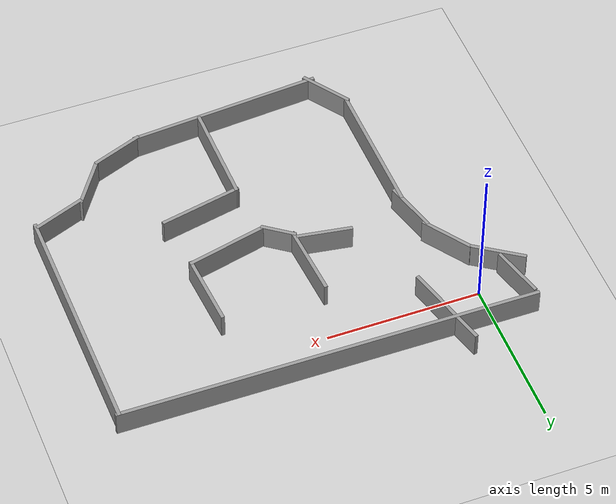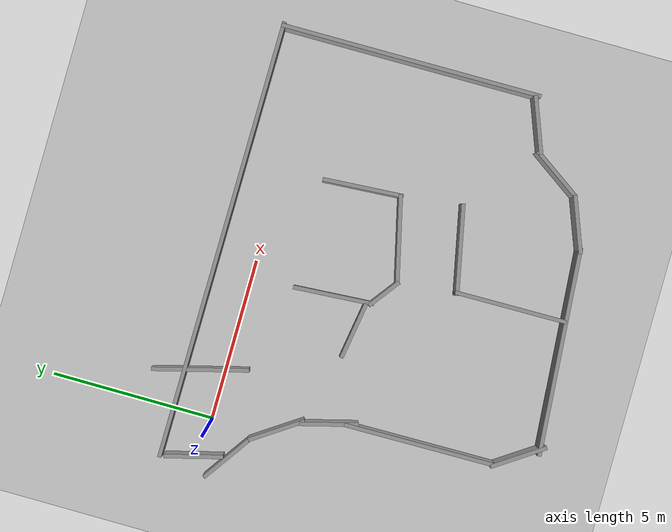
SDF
<sdf version="1.7">
 <world name="default">
  <light name="sun" type="directional">
   <pose>0 0 10 0 -0 0</pose>
   <diffuse>0.8 0.8 0.8 1</diffuse>
   <specular>0.2 0.2 0.2 1</specular>
   <attenuation>
    <range>1000</range>
    <constant>0.9</constant>
    <linear>0.01</linear>
    <quadratic>0.001</quadratic>
   </attenuation>
   <direction>-0.5 0.1 -0.9</direction>
   <spot><inner_angle>0</inner_angle><outer_angle>0</outer_angle><falloff>0</falloff></spot>
  </light>
  <model name="ground_plane">
   <static>1</static>
   <link name="link">
    <collision name="collision">
     <geometry><plane><normal>0 0 1</normal><size>100 100</size></plane></geometry>
     <surface><friction><ode><mu>100</mu><mu2>50</mu2></ode></friction></surface>
    </collision>
    <visual name="visual">
     <cast_shadows>0</cast_shadows>
     <geometry><plane><normal>0 0 1</normal><size>100 100</size></plane></geometry>
     <material>
      <script><uri>file://media/materials/scripts/gazebo.material</uri><name>Gazebo/Grey</name></script>
     </material>
    </visual>
   </link>
  </model>
  <gravity>0 0 -9.8</gravity>
  <magnetic_field>6e-06 2.3e-05 -4.2e-05</magnetic_field>
  <atmosphere type="adiabatic"/>
  <physics type="ode">
   <max_step_size>0.001</max_step_size>
   <real_time_factor>1</real_time_factor>
   <real_time_update_rate>1000</real_time_update_rate>
  </physics>
  <scene><ambient>0.4 0.4 0.4 1</ambient><background>0.7 0.7 0.7 1</background><shadows>1</shadows></scene>
  <spherical_coordinates>
   <surface_model>EARTH_WGS84</surface_model>
   <latitude_deg>0</latitude_deg>
   <longitude_deg>0</longitude_deg>
   <elevation>0</elevation>
   <heading_deg>0</heading_deg>
  </spherical_coordinates>
  <model name="maze_modelv3">
   <link name="link">
    <inertial>
     <mass>1.62017</mass>
     <inertia><ixx>25.0752</ixx><ixy>0</ixy><ixz>0</ixz><iyy>0.136935</iyy><iyz>0</iyz><izz>24.9421</izz></inertia>
    </inertial>
    <pose>1.11344 1.70908 -0.183149 0 -0 1.56621</pose>
    <visual name="visual">
     <geometry><box><size>0.119269 13.5912 1</size></box></geometry>
     <material>
      <script><name>Gazebo/Grey</name><uri>file://media/materials/scripts/gazebo.material</uri></script>
      <shader type="pixel"/>
     </material>
    </visual>
    <collision name="collision">
     <geometry><box><size>0.119269 13.5912 1</size></box></geometry>
     <surface>
      <friction>
       <ode><mu>1</mu><mu2>1</mu2><fdir1>0 0 0</fdir1><slip1>0</slip1><slip2>0</slip2></ode>
       <torsional>
        <coefficient>1</coefficient>
        <patch_radius>0</patch_radius>
        <surface_radius>0</surface_radius>
        <use_patch_radius>1</use_patch_radius>
        <ode><slip>0</slip></ode>
       </torsional>
      </friction>
      <bounce><restitution_coefficient>0</restitution_coefficient><threshold>1e+06</threshold></bounce>
      <contact>
       <collide_without_contact>0</collide_without_contact>
       <collide_without_contact_bitmask>1</collide_without_contact_bitmask>
       <collide_bitmask>1</collide_bitmask>
       <ode>
        <soft_cfm>0</soft_cfm>
        <soft_erp>0.2</soft_erp>
        <kp>1e+13</kp>
        <kd>1</kd>
        <max_vel>0.01</max_vel>
        <min_depth>0</min_depth>
       </ode>
       <bullet>
        <split_impulse>1</split_impulse>
        <split_impulse_penetration_threshold>-0.01</split_impulse_penetration_threshold>
        <soft_cfm>0</soft_cfm>
        <soft_erp>0.2</soft_erp>
        <kp>1e+13</kp>
        <kd>1</kd>
       </bullet>
      </contact>
     </surface>
    </collision>
   </link>
   <link name="link_clone_0">
    <inertial>
     <mass>0.212702</mass>
     <inertia>
      <ixx>0.0741382</ixx>
      <ixy>0</ixy>
      <ixz>0</ixz>
      <iyy>0.0179773</iyy>
      <iyz>0</iyz>
      <izz>0.0566651</izz>
     </inertia>
    </inertial>
    <pose>-5.16764 -0.221401 -0.183151 6e-06 -8e-06 0.964406</pose>
    <visual name="visual">
     <geometry><box><size>0.119269 1.784 1</size></box></geometry>
     <material>
      <script><name>Gazebo/Grey</name><uri>file://media/materials/scripts/gazebo.material</uri></script>
      <shader type="pixel"><normal_map>__default__</normal_map></shader>
     </material>
    </visual>
    <collision name="collision">
     <geometry><box><size>0.119269 1.784 1</size></box></geometry>
     <surface>
      <friction>
       <ode><mu>1</mu><mu2>1</mu2><fdir1>0 0 0</fdir1><slip1>0</slip1><slip2>0</slip2></ode>
       <torsional>
        <coefficient>1</coefficient>
        <patch_radius>0</patch_radius>
        <surface_radius>0</surface_radius>
        <use_patch_radius>1</use_patch_radius>
        <ode><slip>0</slip></ode>
       </torsional>
      </friction>
      <bounce><restitution_coefficient>0</restitution_coefficient><threshold>1e+06</threshold></bounce>
      <contact>
       <collide_without_contact>0</collide_without_contact>
       <collide_without_contact_bitmask>1</collide_without_contact_bitmask>
       <collide_bitmask>1</collide_bitmask>
       <ode>
        <soft_cfm>0</soft_cfm>
        <soft_erp>0.2</soft_erp>
        <kp>1e+13</kp>
        <kd>1</kd>
        <max_vel>0.01</max_vel>
        <min_depth>0</min_depth>
       </ode>
       <bullet>
        <split_impulse>1</split_impulse>
        <split_impulse_penetration_threshold>-0.01</split_impulse_penetration_threshold>
        <soft_cfm>0</soft_cfm>
        <soft_erp>0.2</soft_erp>
        <kp>1e+13</kp>
        <kd>1</kd>
       </bullet>
      </contact>
     </surface>
    </collision>
   </link>
   <link name="link_clone_0_clone">
    <inertial>
     <mass>0.212702</mass>
     <inertia>
      <ixx>0.0741382</ixx>
      <ixy>0</ixy>
      <ixz>0</ixz>
      <iyy>0.0179773</iyy>
      <iyz>0</iyz>
      <izz>0.0566651</izz>
     </inertia>
    </inertial>
    <pose>-3.96131 -1.42523 -0.183167 1.7e-05 -1.1e-05 0.59672</pose>
    <visual name="visual">
     <geometry><box><size>0.119269 1.784 1</size></box></geometry>
     <material>
      <script><name>Gazebo/Grey</name><uri>file://media/materials/scripts/gazebo.material</uri></script>
      <shader type="pixel"><normal_map>__default__</normal_map></shader>
     </material>
    </visual>
    <collision name="collision">
     <geometry><box><size>0.119269 1.784 1</size></box></geometry>
     <surface>
      <friction>
       <ode><mu>1</mu><mu2>1</mu2><fdir1>0 0 0</fdir1><slip1>0</slip1><slip2>0</slip2></ode>
       <torsional>
        <coefficient>1</coefficient>
        <patch_radius>0</patch_radius>
        <surface_radius>0</surface_radius>
        <use_patch_radius>1</use_patch_radius>
        <ode><slip>0</slip></ode>
       </torsional>
      </friction>
      <bounce><restitution_coefficient>0</restitution_coefficient><threshold>1e+06</threshold></bounce>
      <contact>
       <collide_without_contact>0</collide_without_contact>
       <collide_without_contact_bitmask>1</collide_without_contact_bitmask>
       <collide_bitmask>1</collide_bitmask>
       <ode>
        <soft_cfm>0</soft_cfm>
        <soft_erp>0.2</soft_erp>
        <kp>1e+13</kp>
        <kd>1</kd>
        <max_vel>0.01</max_vel>
        <min_depth>0</min_depth>
       </ode>
       <bullet>
        <split_impulse>1</split_impulse>
        <split_impulse_penetration_threshold>-0.01</split_impulse_penetration_threshold>
        <soft_cfm>0</soft_cfm>
        <soft_erp>0.2</soft_erp>
        <kp>1e+13</kp>
        <kd>1</kd>
       </bullet>
      </contact>
     </surface>
    </collision>
   </link>
   <link name="link_clone_0_clone_0">
    <inertial>
     <mass>0.212702</mass>
     <inertia>
      <ixx>0.0741382</ixx>
      <ixy>0</ixy>
      <ixz>0</ixz>
      <iyy>0.0179773</iyy>
      <iyz>0</iyz>
      <izz>0.0566651</izz>
     </inertia>
    </inertial>
    <pose>-0.44936 -2.84837 -0.183181 3e-06 -2e-05 1.41446</pose>
    <visual name="visual">
     <geometry><box><size>0.119269 1.784 1</size></box></geometry>
     <material>
      <script><name>Gazebo/Grey</name><uri>file://media/materials/scripts/gazebo.material</uri></script>
      <shader type="pixel"><normal_map>__default__</normal_map></shader>
     </material>
    </visual>
    <collision name="collision">
     <geometry><box><size>0.119269 1.784 1</size></box></geometry>
     <surface>
      <friction>
       <ode><mu>1</mu><mu2>1</mu2><fdir1>0 0 0</fdir1><slip1>0</slip1><slip2>0</slip2></ode>
       <torsional>
        <coefficient>1</coefficient>
        <patch_radius>0</patch_radius>
        <surface_radius>0</surface_radius>
        <use_patch_radius>1</use_patch_radius>
        <ode><slip>0</slip></ode>
       </torsional>
      </friction>
      <bounce><restitution_coefficient>0</restitution_coefficient><threshold>1e+06</threshold></bounce>
      <contact>
       <collide_without_contact>0</collide_without_contact>
       <collide_without_contact_bitmask>1</collide_without_contact_bitmask>
       <collide_bitmask>1</collide_bitmask>
       <ode>
        <soft_cfm>0</soft_cfm>
        <soft_erp>0.2</soft_erp>
        <kp>1e+13</kp>
        <kd>1</kd>
        <max_vel>0.01</max_vel>
        <min_depth>0</min_depth>
       </ode>
       <bullet>
        <split_impulse>1</split_impulse>
        <split_impulse_penetration_threshold>-0.01</split_impulse_penetration_threshold>
        <soft_cfm>0</soft_cfm>
        <soft_erp>0.2</soft_erp>
        <kp>1e+13</kp>
        <kd>1</kd>
       </bullet>
      </contact>
     </surface>
    </collision>
   </link>
   <link name="link_clone_0_clone_clone">
    <inertial>
     <mass>0.212702</mass>
     <inertia>
      <ixx>0.0741382</ixx>
      <ixy>0</ixy>
      <ixz>0</ixz>
      <iyy>0.0179773</iyy>
      <iyz>0</iyz>
      <izz>0.0566651</izz>
     </inertia>
    </inertial>
    <pose>-3.35077 -2.88714 -0.183198 2.9e-05 -7e-06 0.258019</pose>
    <visual name="visual">
     <geometry><box><size>0.119269 1.784 1</size></box></geometry>
     <material>
      <script><name>Gazebo/Grey</name><uri>file://media/materials/scripts/gazebo.material</uri></script>
      <shader type="pixel"><normal_map>__default__</normal_map></shader>
     </material>
    </visual>
    <collision name="collision">
     <geometry><box><size>0.119269 1.784 1</size></box></geometry>
     <surface>
      <friction>
       <ode><mu>1</mu><mu2>1</mu2><fdir1>0 0 0</fdir1><slip1>0</slip1><slip2>0</slip2></ode>
       <torsional>
        <coefficient>1</coefficient>
        <patch_radius>0</patch_radius>
        <surface_radius>0</surface_radius>
        <use_patch_radius>1</use_patch_radius>
        <ode><slip>0</slip></ode>
       </torsional>
      </friction>
      <bounce><restitution_coefficient>0</restitution_coefficient><threshold>1e+06</threshold></bounce>
      <contact>
       <collide_without_contact>0</collide_without_contact>
       <collide_without_contact_bitmask>1</collide_without_contact_bitmask>
       <collide_bitmask>1</collide_bitmask>
       <ode>
        <soft_cfm>0</soft_cfm>
        <soft_erp>0.2</soft_erp>
        <kp>1e+13</kp>
        <kd>1</kd>
        <max_vel>0.01</max_vel>
        <min_depth>0</min_depth>
       </ode>
       <bullet>
        <split_impulse>1</split_impulse>
        <split_impulse_penetration_threshold>-0.01</split_impulse_penetration_threshold>
        <soft_cfm>0</soft_cfm>
        <soft_erp>0.2</soft_erp>
        <kp>1e+13</kp>
        <kd>1</kd>
       </bullet>
      </contact>
     </surface>
    </collision>
   </link>
   <link name="link_clone_0_clone_clone_0">
    <inertial>
     <mass>0.561481</mass>
     <inertia>
      <ixx>1.08449</ixx>
      <ixy>0</ixy>
      <ixz>0</ixz>
      <iyy>0.0474556</iyy>
      <iyz>0</iyz>
      <izz>1.03836</izz>
     </inertia>
    </inertial>
    <pose>-3.20858 -5.6898 -0.183226 3e-05 0 0.011304</pose>
    <visual name="visual">
     <geometry><box><size>0.119269 4.70932 1</size></box></geometry>
     <material>
      <script><name>Gazebo/Grey</name><uri>file://media/materials/scripts/gazebo.material</uri></script>
      <shader type="pixel"><normal_map>__default__</normal_map></shader>
     </material>
    </visual>
    <collision name="collision">
     <geometry><box><size>0.119269 4.70932 1</size></box></geometry>
     <surface>
      <friction>
       <ode><mu>1</mu><mu2>1</mu2><fdir1>0 0 0</fdir1><slip1>0</slip1><slip2>0</slip2></ode>
       <torsional>
        <coefficient>1</coefficient>
        <patch_radius>0</patch_radius>
        <surface_radius>0</surface_radius>
        <use_patch_radius>1</use_patch_radius>
        <ode><slip>0</slip></ode>
       </torsional>
      </friction>
      <bounce><restitution_coefficient>0</restitution_coefficient><threshold>1e+06</threshold></bounce>
      <contact>
       <collide_without_contact>0</collide_without_contact>
       <collide_without_contact_bitmask>1</collide_without_contact_bitmask>
       <collide_bitmask>1</collide_bitmask>
       <ode>
        <soft_cfm>0</soft_cfm>
        <soft_erp>0.2</soft_erp>
        <kp>1e+13</kp>
        <kd>1</kd>
        <max_vel>0.01</max_vel>
        <min_depth>0</min_depth>
       </ode>
       <bullet>
        <split_impulse>1</split_impulse>
        <split_impulse_penetration_threshold>-0.01</split_impulse_penetration_threshold>
        <soft_cfm>0</soft_cfm>
        <soft_erp>0.2</soft_erp>
        <kp>1e+13</kp>
        <kd>1</kd>
       </bullet>
      </contact>
     </surface>
    </collision>
   </link>
   <link name="link_clone_0_clone_clone_0_clone">
    <inertial>
     <mass>0.411253</mass>
     <inertia>
      <ixx>0.442019</ixx>
      <ixy>0</ixy>
      <ixz>0</ixz>
      <iyy>0.0347586</iyy>
      <iyz>0</iyz>
      <izz>0.408235</izz>
     </inertia>
    </inertial>
    <pose>1.51011 -7.1894 -0.183298 4e-05 0 0.011304</pose>
    <visual name="visual">
     <geometry><box><size>0.119269 3.44931 1</size></box></geometry>
     <material>
      <script><name>Gazebo/Grey</name><uri>file://media/materials/scripts/gazebo.material</uri></script>
      <shader type="pixel"><normal_map>__default__</normal_map></shader>
     </material>
    </visual>
    <collision name="collision">
     <geometry><box><size>0.119269 3.44931 1</size></box></geometry>
     <surface>
      <friction>
       <ode><mu>1</mu><mu2>1</mu2><fdir1>0 0 0</fdir1><slip1>0</slip1><slip2>0</slip2></ode>
       <torsional>
        <coefficient>1</coefficient>
        <patch_radius>0</patch_radius>
        <surface_radius>0</surface_radius>
        <use_patch_radius>1</use_patch_radius>
        <ode><slip>0</slip></ode>
       </torsional>
      </friction>
      <bounce><restitution_coefficient>0</restitution_coefficient><threshold>1e+06</threshold></bounce>
      <contact>
       <collide_without_contact>0</collide_without_contact>
       <collide_without_contact_bitmask>1</collide_without_contact_bitmask>
       <collide_bitmask>1</collide_bitmask>
       <ode>
        <soft_cfm>0</soft_cfm>
        <soft_erp>0.2</soft_erp>
        <kp>1e+13</kp>
        <kd>1</kd>
        <max_vel>0.01</max_vel>
        <min_depth>0</min_depth>
       </ode>
       <bullet>
        <split_impulse>1</split_impulse>
        <split_impulse_penetration_threshold>-0.01</split_impulse_penetration_threshold>
        <soft_cfm>0</soft_cfm>
        <soft_erp>0.2</soft_erp>
        <kp>1e+13</kp>
        <kd>1</kd>
       </bullet>
      </contact>
     </surface>
    </collision>
   </link>
   <link name="link_clone_0_clone_clone_0_clone_0">
    <inertial>
     <mass>0.329878</mass>
     <inertia>
      <ixx>0.237927</ixx>
      <ixy>0</ixy>
      <ixz>0</ixz>
      <iyy>0.0278809</iyy>
      <iyz>0</iyz>
      <izz>0.210828</izz>
     </inertia>
    </inertial>
    <pose>2.76289 -5.25809 -0.183277 8e-06 3.9e-05 -1.36504</pose>
    <visual name="visual">
     <geometry><box><size>0.119269 2.76678 1</size></box></geometry>
     <material>
      <script><name>Gazebo/Grey</name><uri>file://media/materials/scripts/gazebo.material</uri></script>
      <shader type="pixel"><normal_map>__default__</normal_map></shader>
     </material>
    </visual>
    <collision name="collision">
     <geometry><box><size>0.119269 2.76678 1</size></box></geometry>
     <surface>
      <friction>
       <ode><mu>1</mu><mu2>1</mu2><fdir1>0 0 0</fdir1><slip1>0</slip1><slip2>0</slip2></ode>
       <torsional>
        <coefficient>1</coefficient>
        <patch_radius>0</patch_radius>
        <surface_radius>0</surface_radius>
        <use_patch_radius>1</use_patch_radius>
        <ode><slip>0</slip></ode>
       </torsional>
      </friction>
      <bounce><restitution_coefficient>0</restitution_coefficient><threshold>1e+06</threshold></bounce>
      <contact>
       <collide_without_contact>0</collide_without_contact>
       <collide_without_contact_bitmask>1</collide_without_contact_bitmask>
       <collide_bitmask>1</collide_bitmask>
       <ode>
        <soft_cfm>0</soft_cfm>
        <soft_erp>0.2</soft_erp>
        <kp>1e+13</kp>
        <kd>1</kd>
        <max_vel>0.01</max_vel>
        <min_depth>0</min_depth>
       </ode>
       <bullet>
        <split_impulse>1</split_impulse>
        <split_impulse_penetration_threshold>-0.01</split_impulse_penetration_threshold>
        <soft_cfm>0</soft_cfm>
        <soft_erp>0.2</soft_erp>
        <kp>1e+13</kp>
        <kd>1</kd>
       </bullet>
      </contact>
     </surface>
    </collision>
   </link>
   <link name="link_clone_0_clone_clone_1">
    <inertial>
     <mass>0.963365</mass>
     <inertia>
      <ixx>5.32156</ixx>
      <ixy>0</ixy>
      <ixz>0</ixz>
      <iyy>0.0814224</iyy>
      <iyz>0</iyz>
      <izz>5.24243</izz>
     </inertia>
    </inertial>
    <pose>7.82355 -2.30564 -0.183192 3e-05 -0 0.006152</pose>
    <visual name="visual">
     <geometry><box><size>0.119269 8.08005 1</size></box></geometry>
     <material>
      <script><name>Gazebo/Grey</name><uri>file://media/materials/scripts/gazebo.material</uri></script>
      <shader type="pixel"><normal_map>__default__</normal_map></shader>
     </material>
    </visual>
    <collision name="collision">
     <geometry><box><size>0.119269 8.08005 1</size></box></geometry>
     <surface>
      <friction>
       <ode><mu>1</mu><mu2>1</mu2><fdir1>0 0 0</fdir1><slip1>0</slip1><slip2>0</slip2></ode>
       <torsional>
        <coefficient>1</coefficient>
        <patch_radius>0</patch_radius>
        <surface_radius>0</surface_radius>
        <use_patch_radius>1</use_patch_radius>
        <ode><slip>0</slip></ode>
       </torsional>
      </friction>
      <bounce><restitution_coefficient>0</restitution_coefficient><threshold>1e+06</threshold></bounce>
      <contact>
       <collide_without_contact>0</collide_without_contact>
       <collide_without_contact_bitmask>1</collide_without_contact_bitmask>
       <collide_bitmask>1</collide_bitmask>
       <ode>
        <soft_cfm>0</soft_cfm>
        <soft_erp>0.2</soft_erp>
        <kp>1e+13</kp>
        <kd>1</kd>
        <max_vel>0.01</max_vel>
        <min_depth>0</min_depth>
       </ode>
       <bullet>
        <split_impulse>1</split_impulse>
        <split_impulse_penetration_threshold>-0.01</split_impulse_penetration_threshold>
        <soft_cfm>0</soft_cfm>
        <soft_erp>0.2</soft_erp>
        <kp>1e+13</kp>
        <kd>1</kd>
       </bullet>
      </contact>
     </surface>
    </collision>
   </link>
   <link name="link_clone_0_clone_clone_2">
    <inertial>
     <mass>0.212702</mass>
     <inertia>
      <ixx>0.0741382</ixx>
      <ixy>0</ixy>
      <ixz>0</ixz>
      <iyy>0.0179773</iyy>
      <iyz>0</iyz>
      <izz>0.0566651</izz>
     </inertia>
    </inertial>
    <pose>-2.7542 -8.63842 -0.183253 2.5e-05 -1.7e-05 0.59672</pose>
    <visual name="visual">
     <geometry><box><size>0.119269 1.784 1</size></box></geometry>
     <material>
      <script><name>Gazebo/Grey</name><uri>file://media/materials/scripts/gazebo.material</uri></script>
      <shader type="pixel"><normal_map>__default__</normal_map></shader>
     </material>
    </visual>
    <collision name="collision">
     <geometry><box><size>0.119269 1.784 1</size></box></geometry>
     <surface>
      <friction>
       <ode><mu>1</mu><mu2>1</mu2><fdir1>0 0 0</fdir1><slip1>0</slip1><slip2>0</slip2></ode>
       <torsional>
        <coefficient>1</coefficient>
        <patch_radius>0</patch_radius>
        <surface_radius>0</surface_radius>
        <use_patch_radius>1</use_patch_radius>
        <ode><slip>0</slip></ode>
       </torsional>
      </friction>
      <bounce><restitution_coefficient>0</restitution_coefficient><threshold>1e+06</threshold></bounce>
      <contact>
       <collide_without_contact>0</collide_without_contact>
       <collide_without_contact_bitmask>1</collide_without_contact_bitmask>
       <collide_bitmask>1</collide_bitmask>
       <ode>
        <soft_cfm>0</soft_cfm>
        <soft_erp>0.2</soft_erp>
        <kp>1e+13</kp>
        <kd>1</kd>
        <max_vel>0.01</max_vel>
        <min_depth>0</min_depth>
       </ode>
       <bullet>
        <split_impulse>1</split_impulse>
        <split_impulse_penetration_threshold>-0.01</split_impulse_penetration_threshold>
        <soft_cfm>0</soft_cfm>
        <soft_erp>0.2</soft_erp>
        <kp>1e+13</kp>
        <kd>1</kd>
       </bullet>
      </contact>
     </surface>
    </collision>
   </link>
   <link name="link_clone_0_clone_clone_3">
    <inertial>
     <mass>0.212702</mass>
     <inertia>
      <ixx>0.0741382</ixx>
      <ixy>0</ixy>
      <ixz>0</ixz>
      <iyy>0.0179773</iyy>
      <iyz>0</iyz>
      <izz>0.0566651</izz>
     </inertia>
    </inertial>
    <pose>7.00413 -6.49822 -0.183232 1e-05 2.8e-05 -1.20405</pose>
    <visual name="visual">
     <geometry><box><size>0.119269 1.784 1</size></box></geometry>
     <material>
      <script><name>Gazebo/Grey</name><uri>file://media/materials/scripts/gazebo.material</uri></script>
      <shader type="pixel"><normal_map>__default__</normal_map></shader>
     </material>
    </visual>
    <collision name="collision">
     <geometry><box><size>0.119269 1.784 1</size></box></geometry>
     <surface>
      <friction>
       <ode><mu>1</mu><mu2>1</mu2><fdir1>0 0 0</fdir1><slip1>0</slip1><slip2>0</slip2></ode>
       <torsional>
        <coefficient>1</coefficient>
        <patch_radius>0</patch_radius>
        <surface_radius>0</surface_radius>
        <use_patch_radius>1</use_patch_radius>
        <ode><slip>0</slip></ode>
       </torsional>
      </friction>
      <bounce><restitution_coefficient>0</restitution_coefficient><threshold>1e+06</threshold></bounce>
      <contact>
       <collide_without_contact>0</collide_without_contact>
       <collide_without_contact_bitmask>1</collide_without_contact_bitmask>
       <collide_bitmask>1</collide_bitmask>
       <ode>
        <soft_cfm>0</soft_cfm>
        <soft_erp>0.2</soft_erp>
        <kp>1e+13</kp>
        <kd>1</kd>
        <max_vel>0.01</max_vel>
        <min_depth>0</min_depth>
       </ode>
       <bullet>
        <split_impulse>1</split_impulse>
        <split_impulse_penetration_threshold>-0.01</split_impulse_penetration_threshold>
        <soft_cfm>0</soft_cfm>
        <soft_erp>0.2</soft_erp>
        <kp>1e+13</kp>
        <kd>1</kd>
       </bullet>
      </contact>
     </surface>
    </collision>
   </link>
   <link name="link_clone_0_clone_clone_3_clone">
    <inertial>
     <mass>0.212702</mass>
     <inertia>
      <ixx>0.0741382</ixx>
      <ixy>0</ixy>
      <ixz>0</ixz>
      <iyy>0.0179773</iyy>
      <iyz>0</iyz>
      <izz>0.0566651</izz>
     </inertia>
    </inertial>
    <pose>5.72859 -7.43919 -0.183306 3.2e-05 2.3e-05 -0.602947</pose>
    <visual name="visual">
     <geometry><box><size>0.119269 1.784 1</size></box></geometry>
     <material>
      <script><name>Gazebo/Grey</name><uri>file://media/materials/scripts/gazebo.material</uri></script>
      <shader type="pixel"><normal_map>__default__</normal_map></shader>
     </material>
    </visual>
    <collision name="collision">
     <geometry><box><size>0.119269 1.784 1</size></box></geometry>
     <surface>
      <friction>
       <ode><mu>1</mu><mu2>1</mu2><fdir1>0 0 0</fdir1><slip1>0</slip1><slip2>0</slip2></ode>
       <torsional>
        <coefficient>1</coefficient>
        <patch_radius>0</patch_radius>
        <surface_radius>0</surface_radius>
        <use_patch_radius>1</use_patch_radius>
        <ode><slip>0</slip></ode>
       </torsional>
      </friction>
      <bounce><restitution_coefficient>0</restitution_coefficient><threshold>1e+06</threshold></bounce>
      <contact>
       <collide_without_contact>0</collide_without_contact>
       <collide_without_contact_bitmask>1</collide_without_contact_bitmask>
       <collide_bitmask>1</collide_bitmask>
       <ode>
        <soft_cfm>0</soft_cfm>
        <soft_erp>0.2</soft_erp>
        <kp>1e+13</kp>
        <kd>1</kd>
        <max_vel>0.01</max_vel>
        <min_depth>0</min_depth>
       </ode>
       <bullet>
        <split_impulse>1</split_impulse>
        <split_impulse_penetration_threshold>-0.01</split_impulse_penetration_threshold>
        <soft_cfm>0</soft_cfm>
        <soft_erp>0.2</soft_erp>
        <kp>1e+13</kp>
        <kd>1</kd>
       </bullet>
      </contact>
     </surface>
    </collision>
   </link>
   <link name="link_clone_0_clone_clone_3_clone_0">
    <inertial>
     <mass>0.212702</mass>
     <inertia>
      <ixx>0.0741382</ixx>
      <ixy>0</ixy>
      <ixz>0</ixz>
      <iyy>0.0179773</iyy>
      <iyz>0</iyz>
      <izz>0.0566651</izz>
     </inertia>
    </inertial>
    <pose>4.44667 -8.45102 -0.183317 1.4e-05 3.7e-05 -1.20405</pose>
    <visual name="visual">
     <geometry><box><size>0.119269 1.784 1</size></box></geometry>
     <material>
      <script><name>Gazebo/Grey</name><uri>file://media/materials/scripts/gazebo.material</uri></script>
      <shader type="pixel"><normal_map>__default__</normal_map></shader>
     </material>
    </visual>
    <collision name="collision">
     <geometry><box><size>0.119269 1.784 1</size></box></geometry>
     <surface>
      <friction>
       <ode><mu>1</mu><mu2>1</mu2><fdir1>0 0 0</fdir1><slip1>0</slip1><slip2>0</slip2></ode>
       <torsional>
        <coefficient>1</coefficient>
        <patch_radius>0</patch_radius>
        <surface_radius>0</surface_radius>
        <use_patch_radius>1</use_patch_radius>
        <ode><slip>0</slip></ode>
       </torsional>
      </friction>
      <bounce><restitution_coefficient>0</restitution_coefficient><threshold>1e+06</threshold></bounce>
      <contact>
       <collide_without_contact>0</collide_without_contact>
       <collide_without_contact_bitmask>1</collide_without_contact_bitmask>
       <collide_bitmask>1</collide_bitmask>
       <ode>
        <soft_cfm>0</soft_cfm>
        <soft_erp>0.2</soft_erp>
        <kp>1e+13</kp>
        <kd>1</kd>
        <max_vel>0.01</max_vel>
        <min_depth>0</min_depth>
       </ode>
       <bullet>
        <split_impulse>1</split_impulse>
        <split_impulse_penetration_threshold>-0.01</split_impulse_penetration_threshold>
        <soft_cfm>0</soft_cfm>
        <soft_erp>0.2</soft_erp>
        <kp>1e+13</kp>
        <kd>1</kd>
       </bullet>
      </contact>
     </surface>
    </collision>
   </link>
   <link name="link_clone_0_clone_clone_3_clone_0_clone">
    <inertial>
     <mass>0.76067</mass>
     <inertia><ixx>2.6436</ixx><ixy>0</ixy><ixz>0</ixz><iyy>0.0642909</iyy><iyz>0</iyz><izz>2.58111</izz></inertia>
    </inertial>
    <pose>0.624736 -8.97609 -0.183407 4e-06 4.9e-05 -1.49313</pose>
    <visual name="visual">
     <geometry><box><size>0.119269 6.37999 1</size></box></geometry>
     <material>
      <script><name>Gazebo/Grey</name><uri>file://media/materials/scripts/gazebo.material</uri></script>
      <shader type="pixel"><normal_map>__default__</normal_map></shader>
     </material>
    </visual>
    <collision name="collision">
     <geometry><box><size>0.119269 6.37999 1</size></box></geometry>
     <surface>
      <friction>
       <ode><mu>1</mu><mu2>1</mu2><fdir1>0 0 0</fdir1><slip1>0</slip1><slip2>0</slip2></ode>
       <torsional>
        <coefficient>1</coefficient>
        <patch_radius>0</patch_radius>
        <surface_radius>0</surface_radius>
        <use_patch_radius>1</use_patch_radius>
        <ode><slip>0</slip></ode>
       </torsional>
      </friction>
      <bounce><restitution_coefficient>0</restitution_coefficient><threshold>1e+06</threshold></bounce>
      <contact>
       <collide_without_contact>0</collide_without_contact>
       <collide_without_contact_bitmask>1</collide_without_contact_bitmask>
       <collide_bitmask>1</collide_bitmask>
       <ode>
        <soft_cfm>0</soft_cfm>
        <soft_erp>0.2</soft_erp>
        <kp>1e+13</kp>
        <kd>1</kd>
        <max_vel>0.01</max_vel>
        <min_depth>0</min_depth>
       </ode>
       <bullet>
        <split_impulse>1</split_impulse>
        <split_impulse_penetration_threshold>-0.01</split_impulse_penetration_threshold>
        <soft_cfm>0</soft_cfm>
        <soft_erp>0.2</soft_erp>
        <kp>1e+13</kp>
        <kd>1</kd>
       </bullet>
      </contact>
     </surface>
    </collision>
   </link>
   <link name="link_clone_0_clone_clone_3_clone_0_clone_0">
    <inertial>
     <mass>0.295273</mass>
     <inertia>
      <ixx>0.175523</ixx>
      <ixy>0</ixy>
      <ixz>0</ixz>
      <iyy>0.0249561</iyy>
      <iyz>0</iyz>
      <izz>0.151266</izz>
     </inertia>
    </inertial>
    <pose>0.404987 -1.9728 -0.183337 4.9e-05 -3e-06 0.066618</pose>
    <visual name="visual">
     <geometry><box><size>0.119269 2.47655 1</size></box></geometry>
     <material>
      <script><name>Gazebo/Grey</name><uri>file://media/materials/scripts/gazebo.material</uri></script>
      <shader type="pixel"><normal_map>__default__</normal_map></shader>
     </material>
    </visual>
    <collision name="collision">
     <geometry><box><size>0.119269 2.47655 1</size></box></geometry>
     <surface>
      <friction>
       <ode><mu>1</mu><mu2>1</mu2><fdir1>0 0 0</fdir1><slip1>0</slip1><slip2>0</slip2></ode>
       <torsional>
        <coefficient>1</coefficient>
        <patch_radius>0</patch_radius>
        <surface_radius>0</surface_radius>
        <use_patch_radius>1</use_patch_radius>
        <ode><slip>0</slip></ode>
       </torsional>
      </friction>
      <bounce><restitution_coefficient>0</restitution_coefficient><threshold>1e+06</threshold></bounce>
      <contact>
       <collide_without_contact>0</collide_without_contact>
       <collide_without_contact_bitmask>1</collide_without_contact_bitmask>
       <collide_bitmask>1</collide_bitmask>
       <ode>
        <soft_cfm>0</soft_cfm>
        <soft_erp>0.2</soft_erp>
        <kp>1e+13</kp>
        <kd>1</kd>
        <max_vel>0.01</max_vel>
        <min_depth>0</min_depth>
       </ode>
       <bullet>
        <split_impulse>1</split_impulse>
        <split_impulse_penetration_threshold>-0.01</split_impulse_penetration_threshold>
        <soft_cfm>0</soft_cfm>
        <soft_erp>0.2</soft_erp>
        <kp>1e+13</kp>
        <kd>1</kd>
       </bullet>
      </contact>
     </surface>
    </collision>
   </link>
   <link name="link_clone_0_clone_clone_3_clone_0_clone_0_clone">
    <inertial>
     <mass>0.295273</mass>
     <inertia>
      <ixx>0.175523</ixx>
      <ixy>0</ixy>
      <ixz>0</ixz>
      <iyy>0.0249561</iyy>
      <iyz>0</iyz>
      <izz>0.151266</izz>
     </inertia>
    </inertial>
    <pose>3.75986 -1.94677 -0.183356 5.9e-05 -4e-06 0.066618</pose>
    <visual name="visual">
     <geometry><box><size>0.119269 2.47655 1</size></box></geometry>
     <material>
      <script><name>Gazebo/Grey</name><uri>file://media/materials/scripts/gazebo.material</uri></script>
      <shader type="pixel"><normal_map>__default__</normal_map></shader>
     </material>
    </visual>
    <collision name="collision">
     <geometry><box><size>0.119269 2.47655 1</size></box></geometry>
     <surface>
      <friction>
       <ode><mu>1</mu><mu2>1</mu2><fdir1>0 0 0</fdir1><slip1>0</slip1><slip2>0</slip2></ode>
       <torsional>
        <coefficient>1</coefficient>
        <patch_radius>0</patch_radius>
        <surface_radius>0</surface_radius>
        <use_patch_radius>1</use_patch_radius>
        <ode><slip>0</slip></ode>
       </torsional>
      </friction>
      <bounce><restitution_coefficient>0</restitution_coefficient><threshold>1e+06</threshold></bounce>
      <contact>
       <collide_without_contact>0</collide_without_contact>
       <collide_without_contact_bitmask>1</collide_without_contact_bitmask>
       <collide_bitmask>1</collide_bitmask>
       <ode>
        <soft_cfm>0</soft_cfm>
        <soft_erp>0.2</soft_erp>
        <kp>1e+13</kp>
        <kd>1</kd>
        <max_vel>0.01</max_vel>
        <min_depth>0</min_depth>
       </ode>
       <bullet>
        <split_impulse>1</split_impulse>
        <split_impulse_penetration_threshold>-0.01</split_impulse_penetration_threshold>
        <soft_cfm>0</soft_cfm>
        <soft_erp>0.2</soft_erp>
        <kp>1e+13</kp>
        <kd>1</kd>
       </bullet>
      </contact>
     </surface>
    </collision>
   </link>
   <link name="link_clone_0_clone_clone_3_clone_0_clone_0_clone_clone">
    <inertial>
     <mass>0.326233</mass>
     <inertia>
      <ixx>0.230724</ixx>
      <ixy>0</ixy>
      <ixz>0</ixz>
      <iyy>0.0275728</iyy>
      <iyz>0</iyz>
      <izz>0.203925</izz>
     </inertia>
    </inertial>
    <pose>2.55605 -3.40907 -0.18339 1.6e-05 6.7e-05 -1.33532</pose>
    <visual name="visual">
     <geometry><box><size>0.119269 2.73621 1</size></box></geometry>
     <material>
      <script><name>Gazebo/Grey</name><uri>file://media/materials/scripts/gazebo.material</uri></script>
      <shader type="pixel"><normal_map>__default__</normal_map></shader>
     </material>
    </visual>
    <collision name="collision">
     <geometry><box><size>0.119269 2.73621 1</size></box></geometry>
     <surface>
      <friction>
       <ode><mu>1</mu><mu2>1</mu2><fdir1>0 0 0</fdir1><slip1>0</slip1><slip2>0</slip2></ode>
       <torsional>
        <coefficient>1</coefficient>
        <patch_radius>0</patch_radius>
        <surface_radius>0</surface_radius>
        <use_patch_radius>1</use_patch_radius>
        <ode><slip>0</slip></ode>
       </torsional>
      </friction>
      <bounce><restitution_coefficient>0</restitution_coefficient><threshold>1e+06</threshold></bounce>
      <contact>
       <collide_without_contact>0</collide_without_contact>
       <collide_without_contact_bitmask>1</collide_without_contact_bitmask>
       <collide_bitmask>1</collide_bitmask>
       <ode>
        <soft_cfm>0</soft_cfm>
        <soft_erp>0.2</soft_erp>
        <kp>1e+13</kp>
        <kd>1</kd>
        <max_vel>0.01</max_vel>
        <min_depth>0</min_depth>
       </ode>
       <bullet>
        <split_impulse>1</split_impulse>
        <split_impulse_penetration_threshold>-0.01</split_impulse_penetration_threshold>
        <soft_cfm>0</soft_cfm>
        <soft_erp>0.2</soft_erp>
        <kp>1e+13</kp>
        <kd>1</kd>
       </bullet>
      </contact>
     </surface>
    </collision>
   </link>
   <link name="link_clone_0_clone_clone_clone">
    <inertial>
     <mass>0.13735</mass>
     <inertia>
      <ixx>0.0266356</ixx>
      <ixy>0</ixy>
      <ixz>0</ixz>
      <iyy>0.0116087</iyy>
      <iyz>0</iyz>
      <izz>0.0153526</izz>
     </inertia>
    </inertial>
    <pose>0.863378 -3.42255 -0.183232 2.4e-05 -3.2e-05 0.929292</pose>
    <visual name="visual">
     <geometry><box><size>0.119269 1.152 1</size></box></geometry>
     <material>
      <script><name>Gazebo/Grey</name><uri>file://media/materials/scripts/gazebo.material</uri></script>
      <shader type="pixel"><normal_map>__default__</normal_map></shader>
     </material>
    </visual>
    <collision name="collision">
     <geometry><box><size>0.119269 1.152 1</size></box></geometry>
     <surface>
      <friction>
       <ode><mu>1</mu><mu2>1</mu2><fdir1>0 0 0</fdir1><slip1>0</slip1><slip2>0</slip2></ode>
       <torsional>
        <coefficient>1</coefficient>
        <patch_radius>0</patch_radius>
        <surface_radius>0</surface_radius>
        <use_patch_radius>1</use_patch_radius>
        <ode><slip>0</slip></ode>
       </torsional>
      </friction>
      <bounce><restitution_coefficient>0</restitution_coefficient><threshold>1e+06</threshold></bounce>
      <contact>
       <collide_without_contact>0</collide_without_contact>
       <collide_without_contact_bitmask>1</collide_without_contact_bitmask>
       <collide_bitmask>1</collide_bitmask>
       <ode>
        <soft_cfm>0</soft_cfm>
        <soft_erp>0.2</soft_erp>
        <kp>1e+13</kp>
        <kd>1</kd>
        <max_vel>0.01</max_vel>
        <min_depth>0</min_depth>
       </ode>
       <bullet>
        <split_impulse>1</split_impulse>
        <split_impulse_penetration_threshold>-0.01</split_impulse_penetration_threshold>
        <soft_cfm>0</soft_cfm>
        <soft_erp>0.2</soft_erp>
        <kp>1e+13</kp>
        <kd>1</kd>
       </bullet>
      </contact>
     </surface>
    </collision>
   </link>
   <link name="link_clone_0_clone_clone_clone_0">
    <inertial>
     <mass>0.212702</mass>
     <inertia>
      <ixx>0.0741382</ixx>
      <ixy>0</ixy>
      <ixz>0</ixz>
      <iyy>0.0179773</iyy>
      <iyz>0</iyz>
      <izz>0.0566651</izz>
     </inertia>
    </inertial>
    <pose>-5.38537 0.760331 -0.183198 2.9e-05 -7e-06 0.258019</pose>
    <visual name="visual">
     <geometry><box><size>0.119269 1.784 1</size></box></geometry>
     <material>
      <script><name>Gazebo/Grey</name><uri>file://media/materials/scripts/gazebo.material</uri></script>
      <shader type="pixel"><normal_map>__default__</normal_map></shader>
     </material>
    </visual>
    <collision name="collision">
     <geometry><box><size>0.119269 1.784 1</size></box></geometry>
     <surface>
      <friction>
       <ode><mu>1</mu><mu2>1</mu2><fdir1>0 0 0</fdir1><slip1>0</slip1><slip2>0</slip2></ode>
       <torsional>
        <coefficient>1</coefficient>
        <patch_radius>0</patch_radius>
        <surface_radius>0</surface_radius>
        <use_patch_radius>1</use_patch_radius>
        <ode><slip>0</slip></ode>
       </torsional>
      </friction>
      <bounce><restitution_coefficient>0</restitution_coefficient><threshold>1e+06</threshold></bounce>
      <contact>
       <collide_without_contact>0</collide_without_contact>
       <collide_without_contact_bitmask>1</collide_without_contact_bitmask>
       <collide_bitmask>1</collide_bitmask>
       <ode>
        <soft_cfm>0</soft_cfm>
        <soft_erp>0.2</soft_erp>
        <kp>1e+13</kp>
        <kd>1</kd>
        <max_vel>0.01</max_vel>
        <min_depth>0</min_depth>
       </ode>
       <bullet>
        <split_impulse>1</split_impulse>
        <split_impulse_penetration_threshold>-0.01</split_impulse_penetration_threshold>
        <soft_cfm>0</soft_cfm>
        <soft_erp>0.2</soft_erp>
        <kp>1e+13</kp>
        <kd>1</kd>
       </bullet>
      </contact>
     </surface>
    </collision>
   </link>
   <link name="link_clone_0_clone_clone_clone_0_clone">
    <inertial>
     <mass>0.351104</mass>
     <inertia>
      <ixx>0.28299</ixx>
      <ixy>0</ixy>
      <ixz>0</ixz>
      <iyy>0.0296749</iyy>
      <iyz>0</iyz>
      <izz>0.254147</izz>
     </inertia>
    </inertial>
    <pose>-2.82126 1.27143 -0.183198 2.9e-05 -7e-06 0.258019</pose>
    <visual name="visual">
     <geometry><box><size>0.119269 2.94482 1</size></box></geometry>
     <material>
      <script><name>Gazebo/Grey</name><uri>file://media/materials/scripts/gazebo.material</uri></script>
      <shader type="pixel"><normal_map>__default__</normal_map></shader>
     </material>
    </visual>
    <collision name="collision">
     <geometry><box><size>0.119269 2.94482 1</size></box></geometry>
     <surface>
      <friction>
       <ode><mu>1</mu><mu2>1</mu2><fdir1>0 0 0</fdir1><slip1>0</slip1><slip2>0</slip2></ode>
       <torsional>
        <coefficient>1</coefficient>
        <patch_radius>0</patch_radius>
        <surface_radius>0</surface_radius>
        <use_patch_radius>1</use_patch_radius>
        <ode><slip>0</slip></ode>
       </torsional>
      </friction>
      <bounce><restitution_coefficient>0</restitution_coefficient><threshold>1e+06</threshold></bounce>
      <contact>
       <collide_without_contact>0</collide_without_contact>
       <collide_without_contact_bitmask>1</collide_without_contact_bitmask>
       <collide_bitmask>1</collide_bitmask>
       <ode>
        <soft_cfm>0</soft_cfm>
        <soft_erp>0.2</soft_erp>
        <kp>1e+13</kp>
        <kd>1</kd>
        <max_vel>0.01</max_vel>
        <min_depth>0</min_depth>
       </ode>
       <bullet>
        <split_impulse>1</split_impulse>
        <split_impulse_penetration_threshold>-0.01</split_impulse_penetration_threshold>
        <soft_cfm>0</soft_cfm>
        <soft_erp>0.2</soft_erp>
        <kp>1e+13</kp>
        <kd>1</kd>
       </bullet>
      </contact>
     </surface>
    </collision>
   </link>
   <static>1</static>
   <pose>4.2246 -0.5472 0.5 0 -0 0</pose>
  </model>
 </world>
</sdf>
